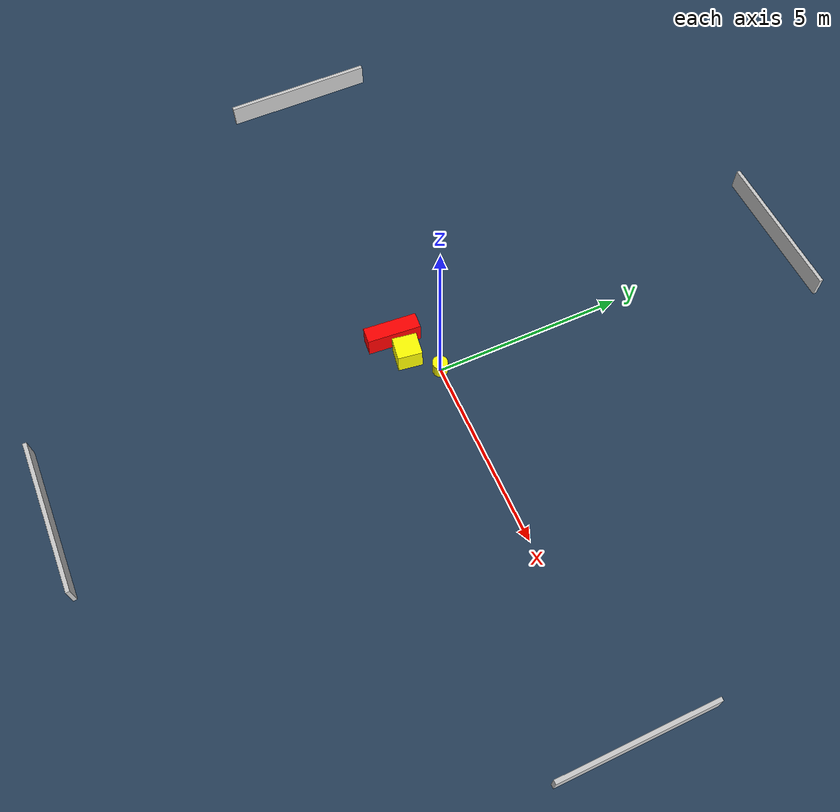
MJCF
<?xml version="1.0" ?>
<mujoco model="generated_environment">
  <option timestep="0.01" integrator="RK4" cone="elliptic"/>
  <default>
    <geom density="1"/>
  </default>
  <asset>
    <texture builtin="gradient" height="3072" name="skybox" rgb1="0.3 0.5 0.7" rgb2="0 0 0" type="skybox" width="512"/>
    <texture builtin="checker" height="300" name="groundplane" rgb1="0.2 0.3 0.4" rgb2="0.1 0.2 0.3" type="2d" width="300"/>
    <material name="groundplane" reflectance="0.2" texrepeat="5 5" texture="groundplane"/>
  </asset>
  <worldbody>
    <light dir="0 0 -1" directional="true" pos="0 0 1.5"/>
    <geom condim="3" friction="0.5 0.005 0.001" material="groundplane" name="floor" pos="0 0 0" size="0 0 0.05" type="plane"/>
    <body name="walls">
      <geom name="wall_1" condim="4" pos="-10.0 0.0 0.3" rgba="0.800000011920929 0.800000011920929 0.800000011920929 1.0" size="0.05 2.0 0.3" type="box"/>
      <geom name="wall_2" condim="4" pos="10.0 0.0 0.3" rgba="0.800000011920929 0.800000011920929 0.800000011920929 1.0" size="0.05 2.0 0.3" type="box"/>
      <geom name="wall_3" condim="4" pos="0.0 -10.0 0.3" rgba="0.800000011920929 0.800000011920929 0.800000011920929 1.0" size="2.0 0.05 0.3" type="box"/>
      <geom name="wall_4" condim="4" pos="0.0 10.0 0.3" rgba="0.800000011920929 0.800000011920929 0.800000011920929 1.0" size="2.0 0.05 0.3" type="box"/>
    </body>
    <body name="robot">
      <joint name="joint_x" type="slide" pos="0 0 0" axis="1 0 0"/>
      <joint name="joint_y" type="slide" pos="0 0 0" axis="0 1 0"/>
      <geom name="robot" type="cylinder" pos="0.0 0.0 0.2" size="0.2 0.2 0.0" mass="5.0" friction="1.0 0.005 0.0001" condim="4" rgba="1.0 1.0 0.0 1.0"/>
    </body>
    <body name="obstacle_1_movable">
      <geom name="obstacle_1_movable" condim="4" pos="-0.678053221254243 -0.6051280612173572 0.3" euler="0 0 351.3022736256792" friction="0.0 0.005 0.001" rgba="1.0 1.0 0.0 1.0" size="0.302952359924124 0.3180497101649646 0.3" type="box" mass="0.1"/>
      <joint type="free"/>
    </body>
    <body name="obstacle_2_static">
      <geom name="obstacle_2_static" condim="4" pos="-1.3252695731395272 -0.7430083848386273 0.3" euler="0 0 85.27865622869695" friction="0.0 0.005 0.001" rgba="1.0 0.0 0.0 1.0" size="0.6974154596504256 0.20843482061786237 0.3" type="box"/>
    </body>
  </worldbody>
  <actuator>
    <motor name="actuator_x" joint="joint_x" gear="1" ctrlrange="-1 1"/>
    <motor name="actuator_y" joint="joint_y" gear="1" ctrlrange="-1 1"/>
  </actuator>
</mujoco>
